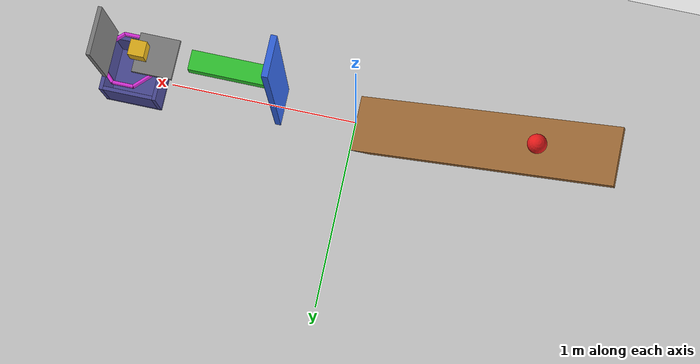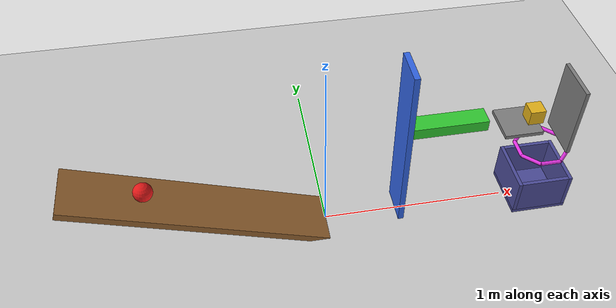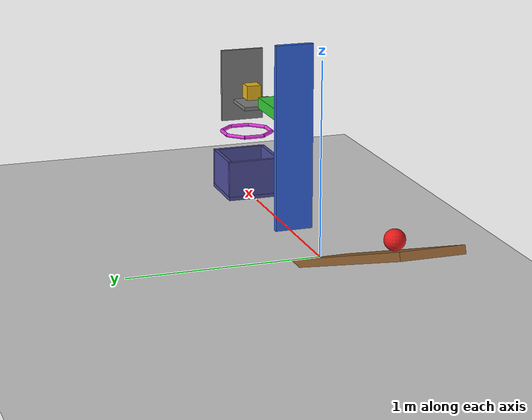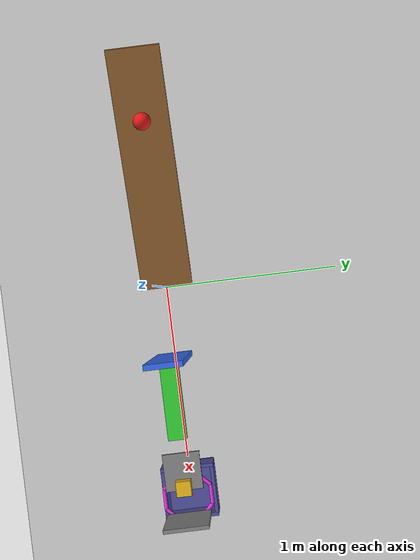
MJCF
<mujoco model="ramp_paddle_slider_block">
  <option timestep="0.002"/>

  <worldbody>
    <light name="sun" pos="0.5 -1 3" dir="0 0.3 -1" directional="true"/>
    <geom name="floor" type="plane" pos="0 0 0" size="5 5 0.1" rgba="0.8 0.8 0.8 1"/>

    <!-- Ramp: 1.4 m long, 20 deg incline, lower edge of top surface at (0,0,0) -->
    <body name="ramp" pos="0 0 0">
      <geom name="ramp_deck" type="box" pos="-0.6646 0 0.2206" euler="0 20 0" size="0.7 0.15 0.02" rgba="0.6 0.4 0.2 1"/>
    </body>

    <!-- Trigger ball: starts 1 m up the ramp (along the slope), at rest -->
    <body name="ball" pos="-0.9226 0 0.3890">
      <freejoint name="ball_free"/>
      <geom name="ball_geom" type="sphere" size="0.05" rgba="0.9 0.1 0.1 1"/>
    </body>

    <!-- Paddle: pendulum hinged at z=1.0, bottom at z=0.02 -->
    <body name="paddle" pos="0.4 0 1.0">
      <joint name="paddle_hinge" type="hinge" axis="0 1 0" pos="0 0 0"/>
      <geom name="paddle_arm" type="box" pos="0 0 -0.49" size="0.015 0.1 0.49" mass="0.3" rgba="0.2 0.4 0.9 1"/>
    </body>

    <!-- Slider: horizontal striker at z=0.6 just right of the paddle -->
    <body name="slider" pos="0.62 0 0.6">
      <joint name="slider_slide" type="slide" axis="1 0 0" limited="true" range="-0.01 0.29" damping="0.02"/>
      <geom name="slider_bar" type="box" size="0.2 0.05 0.03" mass="0.1" friction="0.1 0.005 0.0001" rgba="0.2 0.8 0.2 1"/>
    </body>

    <!-- Ledge: slab with edge at x=1.10, plus a backstop plate beyond the edge -->
    <body name="ledge" pos="0 0 0">
      <geom name="ledge_slab" type="box" pos="1.0 0 0.55" size="0.1 0.1 0.01" friction="0.1 0.005 0.0001" rgba="0.5 0.5 0.5 1"/>
      <geom name="ledge_backstop" type="box" pos="1.26 0 0.6" size="0.01 0.12 0.2" friction="0.1 0.005 0.0001" rgba="0.5 0.5 0.5 1"/>
    </body>

    <!-- Block: sits on the ledge near its edge -->
    <body name="block" pos="1.08 0 0.6">
      <freejoint name="block_free"/>
      <geom name="block_geom" type="box" size="0.04 0.04 0.04" mass="0.05" friction="0.1 0.005 0.0001" rgba="0.9 0.7 0.1 1"/>
    </body>

    <!-- Hoop: horizontal octagonal ring at z=0.35 centred at x=1.175 -->
    <body name="hoop" pos="0 0 0">
      <geom name="hoop_s1" type="capsule" fromto="1.3043 0.0536 0.35 1.2286 0.1293 0.35" size="0.01" rgba="0.9 0.2 0.9 1"/>
      <geom name="hoop_s2" type="capsule" fromto="1.2286 0.1293 0.35 1.1214 0.1293 0.35" size="0.01" rgba="0.9 0.2 0.9 1"/>
      <geom name="hoop_s3" type="capsule" fromto="1.1214 0.1293 0.35 1.0457 0.0536 0.35" size="0.01" rgba="0.9 0.2 0.9 1"/>
      <geom name="hoop_s4" type="capsule" fromto="1.0457 0.0536 0.35 1.0457 -0.0536 0.35" size="0.01" rgba="0.9 0.2 0.9 1"/>
      <geom name="hoop_s5" type="capsule" fromto="1.0457 -0.0536 0.35 1.1214 -0.1293 0.35" size="0.01" rgba="0.9 0.2 0.9 1"/>
      <geom name="hoop_s6" type="capsule" fromto="1.1214 -0.1293 0.35 1.2286 -0.1293 0.35" size="0.01" rgba="0.9 0.2 0.9 1"/>
      <geom name="hoop_s7" type="capsule" fromto="1.2286 -0.1293 0.35 1.3043 -0.0536 0.35" size="0.01" rgba="0.9 0.2 0.9 1"/>
      <geom name="hoop_s8" type="capsule" fromto="1.3043 -0.0536 0.35 1.3043 0.0536 0.35" size="0.01" rgba="0.9 0.2 0.9 1"/>
    </body>

    <!-- Catching box on the floor, high friction so the block settles -->
    <body name="box" pos="0 0 0">
      <geom name="box_base" type="box" pos="1.175 0 0.01" size="0.15 0.15 0.01" friction="1 0.005 0.0001" rgba="0.3 0.3 0.6 1"/>
      <geom name="box_wall_xneg" type="box" pos="1.035 0 0.12" size="0.01 0.15 0.1" friction="1 0.005 0.0001" rgba="0.3 0.3 0.6 1"/>
      <geom name="box_wall_xpos" type="box" pos="1.315 0 0.12" size="0.01 0.15 0.1" friction="1 0.005 0.0001" rgba="0.3 0.3 0.6 1"/>
      <geom name="box_wall_yneg" type="box" pos="1.175 -0.14 0.12" size="0.13 0.01 0.1" friction="1 0.005 0.0001" rgba="0.3 0.3 0.6 1"/>
      <geom name="box_wall_ypos" type="box" pos="1.175 0.14 0.12" size="0.13 0.01 0.1" friction="1 0.005 0.0001" rgba="0.3 0.3 0.6 1"/>
    </body>
  </worldbody>
</mujoco>
